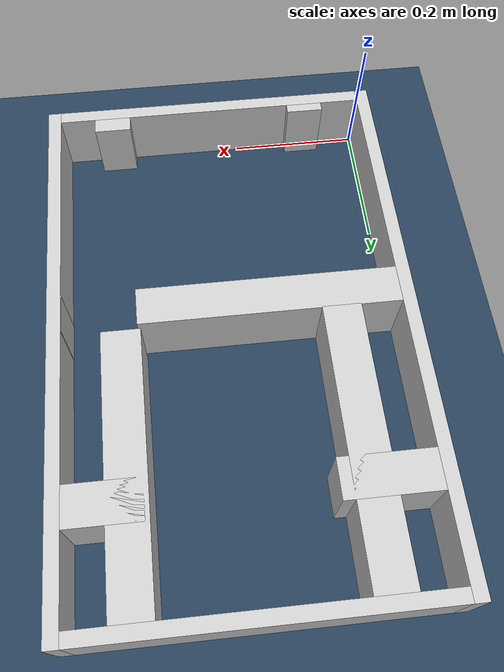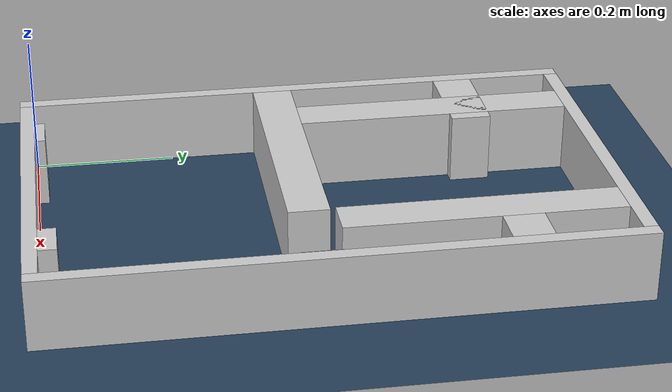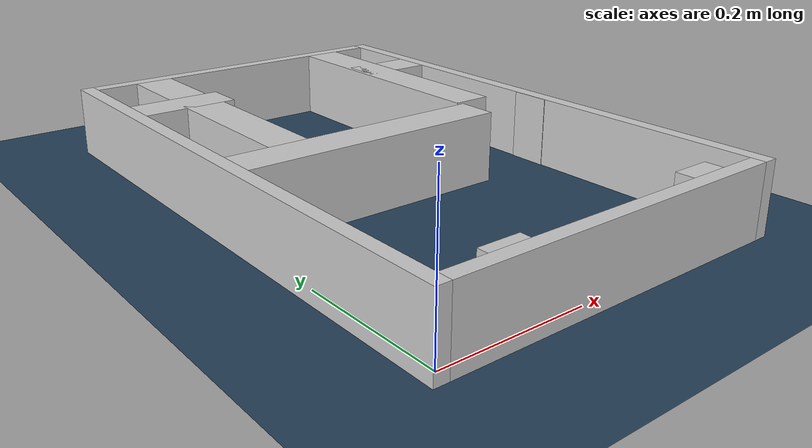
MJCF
<?xml version="1.0" ?>
<mujoco model="generated_real_template">
  <compiler angle="degree"/>
  <option timestep="0.002" integrator="implicitfast" iterations="100" cone="elliptic"/>
  <default>
    <geom density="1"/>
  </default>
  <asset>
    <texture builtin="gradient" height="3072" rgb1="0.3 0.5 0.7" rgb2="0 0 0" type="skybox" width="512"/>
    <texture builtin="checker" height="300" mark="edge" markrgb="0.8 0.8 0.8" name="groundplane" rgb1="0.2 0.3 0.4" rgb2="0.1 0.2 0.3" type="2d" width="300"/>
    <material name="groundplane" reflectance="0.2" texrepeat="5 5" texture="groundplane" texuniform="true"/>
  </asset>
  <worldbody>
    <light dir="0 0 -1" directional="true" pos="0 0 1.5"/>
    <geom name="floor" type="plane" condim="4" friction="0.5 0.005 0.001" material="groundplane" size="0 0 0.05"/>
    <body name="walls">
      <geom name="wall_boundary_left" type="box" condim="4" friction="1.0 0.005 0.0001" rgba="0.8 0.8 0.8 1" pos="-0.010000 0.387500 0.050000" euler="0 0 0.000000" size="0.010000 0.407500 0.050000"/>
      <geom name="wall_boundary_right" type="box" condim="4" friction="1.0 0.005 0.0001" rgba="0.8 0.8 0.8 1" pos="0.500000 0.387500 0.050000" euler="0 0 0.000000" size="0.010000 0.407500 0.050000"/>
      <geom name="wall_boundary_bottom" type="box" condim="4" friction="1.0 0.005 0.0001" rgba="0.8 0.8 0.8 1" pos="0.245000 -0.010000 0.050000" euler="0 0 0.000000" size="0.245000 0.010000 0.050000"/>
      <geom name="wall_boundary_top" type="box" condim="4" friction="1.0 0.005 0.0001" rgba="0.8 0.8 0.8 1" pos="0.245000 0.785000 0.050000" euler="0 0 0.000000" size="0.245000 0.010000 0.050000"/>
      <geom name="wall_inner_1_1" type="box" condim="4" friction="1.0 0.005 0.0001" rgba="0.8 0.8 0.8 1" pos="0.405906 0.012511 0.050000" euler="0 0 90.000000" size="0.012511 0.028500 0.050000"/>
      <geom name="wall_inner_1_2" type="box" condim="4" friction="1.0 0.005 0.0001" rgba="0.8 0.8 0.8 1" pos="0.405906 0.582378 0.050000" euler="0 0 90.000000" size="0.192622 0.028500 0.050000"/>
      <geom name="wall_inner_2_1" type="box" condim="4" friction="1.0 0.005 0.0001" rgba="0.8 0.8 0.8 1" pos="0.191205 0.354145 0.050000" euler="0 0 0.000000" size="0.191205 0.028500 0.050000"/>
      <geom name="wall_inner_2_2" type="box" condim="4" friction="1.0 0.005 0.0001" rgba="0.8 0.8 0.8 1" pos="0.489539 0.354145 0.050000" euler="0 0 0.000000" size="0.000461 0.028500 0.050000"/>
      <geom name="wall_inner_3_1" type="box" condim="4" friction="1.0 0.005 0.0001" rgba="0.8 0.8 0.8 1" pos="0.067358 0.630049 0.050000" euler="0 0 0.000000" size="0.067358 0.028500 0.050000"/>
      <geom name="wall_inner_3_2" type="box" condim="4" friction="1.0 0.005 0.0001" rgba="0.8 0.8 0.8 1" pos="0.436923 0.630049 0.050000" euler="0 0 0.000000" size="0.053077 0.028500 0.050000"/>
      <geom name="wall_inner_4_1" type="box" condim="4" friction="1.0 0.005 0.0001" rgba="0.8 0.8 0.8 1" pos="0.089139 0.007375 0.050000" euler="0 0 90.000000" size="0.007375 0.028500 0.050000"/>
      <geom name="wall_inner_4_2" type="box" condim="4" friction="1.0 0.005 0.0001" rgba="0.8 0.8 0.8 1" pos="0.089139 0.578137 0.050000" euler="0 0 90.000000" size="0.196863 0.028500 0.050000"/>
    </body>
  </worldbody>
</mujoco>
